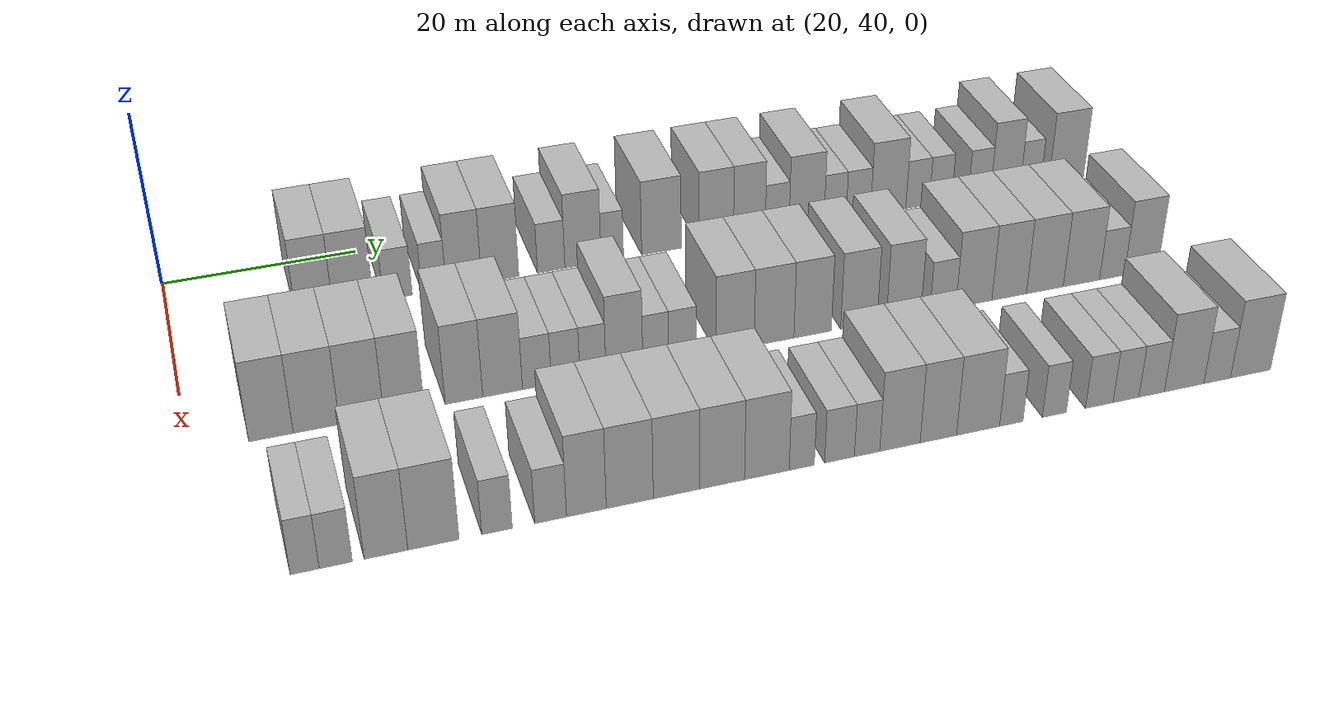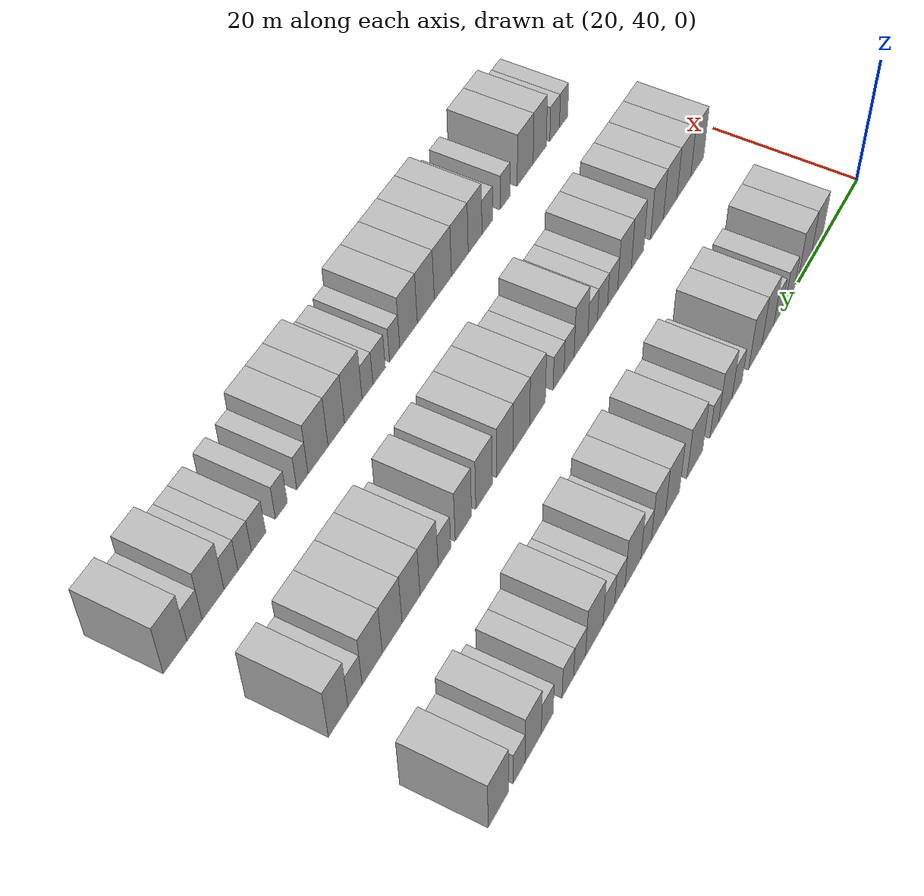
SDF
<sdf version="1.6">
 <world name="default">
  <model name="building_69">
   <static>1</static>
   <pose>25.0000 54.2855 0 0.000000 0.000000 0.000000</pose>
   <link name="link">
    <pose>0 0 4.50 0 0 0</pose>
    <collision name="collision"><geometry><box><size>10.0000 3.7682 9.0000</size></box></geometry></collision>
    <visual name="visual">
     <cast_shadows>0</cast_shadows>
     <geometry><box><size>10.0000 3.7682 9.0000</size></box></geometry>
     <material>
      <script>
       <uri>model://HANNAS_wall/materials/scripts</uri>
       <uri>model://HANNAS_wall/materials/textures</uri>
       <name>vrc/HANNAS_wall</name>
      </script>
     </material>
    </visual>
   </link>
  </model>
  <model name="building_70">
   <static>1</static>
   <pose>25.0000 58.2388 0 0.000000 0.000000 0.000000</pose>
   <link name="link">
    <pose>0 0 4.50 0 0 0</pose>
    <collision name="collision"><geometry><box><size>10.0000 4.1384 9.0000</size></box></geometry></collision>
    <visual name="visual">
     <cast_shadows>0</cast_shadows>
     <geometry><box><size>10.0000 4.1384 9.0000</size></box></geometry>
     <material>
      <script>
       <uri>model://HANNAS_wall/materials/scripts</uri>
       <uri>model://HANNAS_wall/materials/textures</uri>
       <name>vrc/HANNAS_wall</name>
      </script>
     </material>
    </visual>
   </link>
  </model>
  <model name="building_71">
   <static>1</static>
   <pose>25.0000 62.7997 0 0.000000 0.000000 0.000000</pose>
   <link name="link">
    <pose>0 0 3.00 0 0 0</pose>
    <collision name="collision"><geometry><box><size>10.0000 2.9833 6.0000</size></box></geometry></collision>
    <visual name="visual">
     <cast_shadows>0</cast_shadows>
     <geometry><box><size>10.0000 2.9833 6.0000</size></box></geometry>
     <material>
      <script>
       <uri>model://HANNAS_wall/materials/scripts</uri>
       <uri>model://HANNAS_wall/materials/textures</uri>
       <name>vrc/HANNAS_wall</name>
      </script>
     </material>
    </visual>
   </link>
  </model>
  <model name="building_72">
   <static>1</static>
   <pose>25.0000 66.5579 0 0.000000 0.000000 0.000000</pose>
   <link name="link">
    <pose>0 0 3.00 0 0 0</pose>
    <collision name="collision"><geometry><box><size>10.0000 2.5332 6.0000</size></box></geometry></collision>
    <visual name="visual">
     <cast_shadows>0</cast_shadows>
     <geometry><box><size>10.0000 2.5332 6.0000</size></box></geometry>
     <material>
      <script>
       <uri>model://HANNAS_wall/materials/scripts</uri>
       <uri>model://HANNAS_wall/materials/textures</uri>
       <name>vrc/HANNAS_wall</name>
      </script>
     </material>
    </visual>
   </link>
  </model>
  <model name="building_73">
   <static>1</static>
   <pose>25.0000 69.6863 0 0.000000 0.000000 0.000000</pose>
   <link name="link">
    <pose>0 0 4.50 0 0 0</pose>
    <collision name="collision"><geometry><box><size>10.0000 3.7235 9.0000</size></box></geometry></collision>
    <visual name="visual">
     <cast_shadows>0</cast_shadows>
     <geometry><box><size>10.0000 3.7235 9.0000</size></box></geometry>
     <material>
      <script>
       <uri>model://HANNAS_wall/materials/scripts</uri>
       <uri>model://HANNAS_wall/materials/textures</uri>
       <name>vrc/HANNAS_wall</name>
      </script>
     </material>
    </visual>
   </link>
  </model>
  <model name="building_74">
   <static>1</static>
   <pose>25.0000 73.5131 0 0.000000 0.000000 0.000000</pose>
   <link name="link">
    <pose>0 0 4.50 0 0 0</pose>
    <collision name="collision"><geometry><box><size>10.0000 3.9300 9.0000</size></box></geometry></collision>
    <visual name="visual">
     <cast_shadows>0</cast_shadows>
     <geometry><box><size>10.0000 3.9300 9.0000</size></box></geometry>
     <material>
      <script>
       <uri>model://HANNAS_wall/materials/scripts</uri>
       <uri>model://HANNAS_wall/materials/textures</uri>
       <name>vrc/HANNAS_wall</name>
      </script>
     </material>
    </visual>
   </link>
  </model>
  <model name="building_75">
   <static>1</static>
   <pose>25.0000 78.9555 0 0.000000 0.000000 0.000000</pose>
   <link name="link">
    <pose>0 0 3.00 0 0 0</pose>
    <collision name="collision"><geometry><box><size>10.0000 2.9548 6.0000</size></box></geometry></collision>
    <visual name="visual">
     <cast_shadows>0</cast_shadows>
     <geometry><box><size>10.0000 2.9548 6.0000</size></box></geometry>
     <material>
      <script>
       <uri>model://HANNAS_wall/materials/scripts</uri>
       <uri>model://HANNAS_wall/materials/textures</uri>
       <name>vrc/HANNAS_wall</name>
      </script>
     </material>
    </visual>
   </link>
  </model>
  <model name="building_76">
   <static>1</static>
   <pose>25.0000 82.3917 0 0.000000 0.000000 0.000000</pose>
   <link name="link">
    <pose>0 0 4.50 0 0 0</pose>
    <collision name="collision"><geometry><box><size>10.0000 3.9176 9.0000</size></box></geometry></collision>
    <visual name="visual">
     <cast_shadows>0</cast_shadows>
     <geometry><box><size>10.0000 3.9176 9.0000</size></box></geometry>
     <material>
      <script>
       <uri>model://HANNAS_wall/materials/scripts</uri>
       <uri>model://HANNAS_wall/materials/textures</uri>
       <name>vrc/HANNAS_wall</name>
      </script>
     </material>
    </visual>
   </link>
  </model>
  <model name="building_77">
   <static>1</static>
   <pose>25.0000 85.5784 0 0.000000 0.000000 0.000000</pose>
   <link name="link">
    <pose>0 0 3.00 0 0 0</pose>
    <collision name="collision"><geometry><box><size>10.0000 2.4559 6.0000</size></box></geometry></collision>
    <visual name="visual">
     <cast_shadows>0</cast_shadows>
     <geometry><box><size>10.0000 2.4559 6.0000</size></box></geometry>
     <material>
      <script>
       <uri>model://HANNAS_wall/materials/scripts</uri>
       <uri>model://HANNAS_wall/materials/textures</uri>
       <name>vrc/HANNAS_wall</name>
      </script>
     </material>
    </visual>
   </link>
  </model>
  <model name="building_78">
   <static>1</static>
   <pose>25.0000 90.9956 0 0.000000 0.000000 0.000000</pose>
   <link name="link">
    <pose>0 0 4.50 0 0 0</pose>
    <collision name="collision"><geometry><box><size>10.0000 4.3785 9.0000</size></box></geometry></collision>
    <visual name="visual">
     <cast_shadows>0</cast_shadows>
     <geometry><box><size>10.0000 4.3785 9.0000</size></box></geometry>
     <material>
      <script>
       <uri>model://HANNAS_wall/materials/scripts</uri>
       <uri>model://HANNAS_wall/materials/textures</uri>
       <name>vrc/HANNAS_wall</name>
      </script>
     </material>
    </visual>
   </link>
  </model>
  <model name="building_79">
   <static>1</static>
   <pose>25.0000 97.1193 0 0.000000 0.000000 0.000000</pose>
   <link name="link">
    <pose>0 0 4.50 0 0 0</pose>
    <collision name="collision"><geometry><box><size>10.0000 3.8688 9.0000</size></box></geometry></collision>
    <visual name="visual">
     <cast_shadows>0</cast_shadows>
     <geometry><box><size>10.0000 3.8688 9.0000</size></box></geometry>
     <material>
      <script>
       <uri>model://HANNAS_wall/materials/scripts</uri>
       <uri>model://HANNAS_wall/materials/textures</uri>
       <name>vrc/HANNAS_wall</name>
      </script>
     </material>
    </visual>
   </link>
  </model>
  <model name="building_80">
   <static>1</static>
   <pose>25.0000 100.8552 0 0.000000 0.000000 0.000000</pose>
   <link name="link">
    <pose>0 0 4.50 0 0 0</pose>
    <collision name="collision"><geometry><box><size>10.0000 3.6031 9.0000</size></box></geometry></collision>
    <visual name="visual">
     <cast_shadows>0</cast_shadows>
     <geometry><box><size>10.0000 3.6031 9.0000</size></box></geometry>
     <material>
      <script>
       <uri>model://HANNAS_wall/materials/scripts</uri>
       <uri>model://HANNAS_wall/materials/textures</uri>
       <name>vrc/HANNAS_wall</name>
      </script>
     </material>
    </visual>
   </link>
  </model>
  <model name="building_81">
   <static>1</static>
   <pose>25.0000 104.0197 0 0.000000 0.000000 0.000000</pose>
   <link name="link">
    <pose>0 0 3.00 0 0 0</pose>
    <collision name="collision"><geometry><box><size>10.0000 2.7259 6.0000</size></box></geometry></collision>
    <visual name="visual">
     <cast_shadows>0</cast_shadows>
     <geometry><box><size>10.0000 2.7259 6.0000</size></box></geometry>
     <material>
      <script>
       <uri>model://HANNAS_wall/materials/scripts</uri>
       <uri>model://HANNAS_wall/materials/textures</uri>
       <name>vrc/HANNAS_wall</name>
      </script>
     </material>
    </visual>
   </link>
  </model>
  <model name="building_82">
   <static>1</static>
   <pose>25.0000 107.4057 0 0.000000 0.000000 0.000000</pose>
   <link name="link">
    <pose>0 0 4.50 0 0 0</pose>
    <collision name="collision"><geometry><box><size>10.0000 4.0459 9.0000</size></box></geometry></collision>
    <visual name="visual">
     <cast_shadows>0</cast_shadows>
     <geometry><box><size>10.0000 4.0459 9.0000</size></box></geometry>
     <material>
      <script>
       <uri>model://HANNAS_wall/materials/scripts</uri>
       <uri>model://HANNAS_wall/materials/textures</uri>
       <name>vrc/HANNAS_wall</name>
      </script>
     </material>
    </visual>
   </link>
  </model>
  <model name="building_83">
   <static>1</static>
   <pose>25.0000 110.7179 0 0.000000 0.000000 0.000000</pose>
   <link name="link">
    <pose>0 0 3.00 0 0 0</pose>
    <collision name="collision"><geometry><box><size>10.0000 2.5786 6.0000</size></box></geometry></collision>
    <visual name="visual">
     <cast_shadows>0</cast_shadows>
     <geometry><box><size>10.0000 2.5786 6.0000</size></box></geometry>
     <material>
      <script>
       <uri>model://HANNAS_wall/materials/scripts</uri>
       <uri>model://HANNAS_wall/materials/textures</uri>
       <name>vrc/HANNAS_wall</name>
      </script>
     </material>
    </visual>
   </link>
  </model>
  <model name="building_84">
   <static>1</static>
   <pose>25.0000 113.4312 0 0.000000 0.000000 0.000000</pose>
   <link name="link">
    <pose>0 0 3.00 0 0 0</pose>
    <collision name="collision"><geometry><box><size>10.0000 2.8479 6.0000</size></box></geometry></collision>
    <visual name="visual">
     <cast_shadows>0</cast_shadows>
     <geometry><box><size>10.0000 2.8479 6.0000</size></box></geometry>
     <material>
      <script>
       <uri>model://HANNAS_wall/materials/scripts</uri>
       <uri>model://HANNAS_wall/materials/textures</uri>
       <name>vrc/HANNAS_wall</name>
      </script>
     </material>
    </visual>
   </link>
  </model>
  <model name="building_85">
   <static>1</static>
   <pose>25.0000 116.9522 0 0.000000 0.000000 0.000000</pose>
   <link name="link">
    <pose>0 0 4.50 0 0 0</pose>
    <collision name="collision"><geometry><box><size>10.0000 4.1940 9.0000</size></box></geometry></collision>
    <visual name="visual">
     <cast_shadows>0</cast_shadows>
     <geometry><box><size>10.0000 4.1940 9.0000</size></box></geometry>
     <material>
      <script>
       <uri>model://HANNAS_wall/materials/scripts</uri>
       <uri>model://HANNAS_wall/materials/textures</uri>
       <name>vrc/HANNAS_wall</name>
      </script>
     </material>
    </visual>
   </link>
  </model>
  <model name="building_86">
   <static>1</static>
   <pose>25.0000 120.4503 0 0.000000 0.000000 0.000000</pose>
   <link name="link">
    <pose>0 0 3.00 0 0 0</pose>
    <collision name="collision"><geometry><box><size>10.0000 2.8023 6.0000</size></box></geometry></collision>
    <visual name="visual">
     <cast_shadows>0</cast_shadows>
     <geometry><box><size>10.0000 2.8023 6.0000</size></box></geometry>
     <material>
      <script>
       <uri>model://HANNAS_wall/materials/scripts</uri>
       <uri>model://HANNAS_wall/materials/textures</uri>
       <name>vrc/HANNAS_wall</name>
      </script>
     </material>
    </visual>
   </link>
  </model>
  <model name="building_87">
   <static>1</static>
   <pose>25.0000 123.1998 0 0.000000 0.000000 0.000000</pose>
   <link name="link">
    <pose>0 0 3.00 0 0 0</pose>
    <collision name="collision"><geometry><box><size>10.0000 2.6966 6.0000</size></box></geometry></collision>
    <visual name="visual">
     <cast_shadows>0</cast_shadows>
     <geometry><box><size>10.0000 2.6966 6.0000</size></box></geometry>
     <material>
      <script>
       <uri>model://HANNAS_wall/materials/scripts</uri>
       <uri>model://HANNAS_wall/materials/textures</uri>
       <name>vrc/HANNAS_wall</name>
      </script>
     </material>
    </visual>
   </link>
  </model>
  <model name="building_88">
   <static>1</static>
   <pose>25.0000 127.9009 0 0.000000 0.000000 0.000000</pose>
   <link name="link">
    <pose>0 0 3.00 0 0 0</pose>
    <collision name="collision"><geometry><box><size>10.0000 2.7056 6.0000</size></box></geometry></collision>
    <visual name="visual">
     <cast_shadows>0</cast_shadows>
     <geometry><box><size>10.0000 2.7056 6.0000</size></box></geometry>
     <material>
      <script>
       <uri>model://HANNAS_wall/materials/scripts</uri>
       <uri>model://HANNAS_wall/materials/textures</uri>
       <name>vrc/HANNAS_wall</name>
      </script>
     </material>
    </visual>
   </link>
  </model>
  <model name="building_89">
   <static>1</static>
   <pose>25.0000 131.0616 0 0.000000 0.000000 0.000000</pose>
   <link name="link">
    <pose>0 0 4.50 0 0 0</pose>
    <collision name="collision"><geometry><box><size>10.0000 3.6159 9.0000</size></box></geometry></collision>
    <visual name="visual">
     <cast_shadows>0</cast_shadows>
     <geometry><box><size>10.0000 3.6159 9.0000</size></box></geometry>
     <material>
      <script>
       <uri>model://HANNAS_wall/materials/scripts</uri>
       <uri>model://HANNAS_wall/materials/textures</uri>
       <name>vrc/HANNAS_wall</name>
      </script>
     </material>
    </visual>
   </link>
  </model>
  <model name="building_90">
   <static>1</static>
   <pose>25.0000 134.1440 0 0.000000 0.000000 0.000000</pose>
   <link name="link">
    <pose>0 0 3.00 0 0 0</pose>
    <collision name="collision"><geometry><box><size>10.0000 2.5488 6.0000</size></box></geometry></collision>
    <visual name="visual">
     <cast_shadows>0</cast_shadows>
     <geometry><box><size>10.0000 2.5488 6.0000</size></box></geometry>
     <material>
      <script>
       <uri>model://HANNAS_wall/materials/scripts</uri>
       <uri>model://HANNAS_wall/materials/textures</uri>
       <name>vrc/HANNAS_wall</name>
      </script>
     </material>
    </visual>
   </link>
  </model>
  <model name="building_91">
   <static>1</static>
   <pose>25.0000 138.5747 0 0.000000 0.000000 0.000000</pose>
   <link name="link">
    <pose>0 0 4.50 0 0 0</pose>
    <collision name="collision"><geometry><box><size>10.0000 4.3126 9.0000</size></box></geometry></collision>
    <visual name="visual">
     <cast_shadows>0</cast_shadows>
     <geometry><box><size>10.0000 4.3126 9.0000</size></box></geometry>
     <material>
      <script>
       <uri>model://HANNAS_wall/materials/scripts</uri>
       <uri>model://HANNAS_wall/materials/textures</uri>
       <name>vrc/HANNAS_wall</name>
      </script>
     </material>
    </visual>
   </link>
  </model>
  <model name="building_191">
   <static>1</static>
   <pose>44.0000 47.5921 0 0.000000 0.000000 0.000000</pose>
   <link name="link">
    <pose>0 0 4.50 0 0 0</pose>
    <collision name="collision"><geometry><box><size>10.0000 4.0744 9.0000</size></box></geometry></collision>
    <visual name="visual">
     <cast_shadows>0</cast_shadows>
     <geometry><box><size>10.0000 4.0744 9.0000</size></box></geometry>
     <material>
      <script>
       <uri>model://HANNAS_wall/materials/scripts</uri>
       <uri>model://HANNAS_wall/materials/textures</uri>
       <name>vrc/HANNAS_wall</name>
      </script>
     </material>
    </visual>
   </link>
  </model>
  <model name="building_192">
   <static>1</static>
   <pose>44.0000 51.7733 0 0.000000 0.000000 0.000000</pose>
   <link name="link">
    <pose>0 0 4.50 0 0 0</pose>
    <collision name="collision"><geometry><box><size>10.0000 4.2881 9.0000</size></box></geometry></collision>
    <visual name="visual">
     <cast_shadows>0</cast_shadows>
     <geometry><box><size>10.0000 4.2881 9.0000</size></box></geometry>
     <material>
      <script>
       <uri>model://HANNAS_wall/materials/scripts</uri>
       <uri>model://HANNAS_wall/materials/textures</uri>
       <name>vrc/HANNAS_wall</name>
      </script>
     </material>
    </visual>
   </link>
  </model>
  <model name="building_193">
   <static>1</static>
   <pose>44.0000 55.9891 0 0.000000 0.000000 0.000000</pose>
   <link name="link">
    <pose>0 0 4.50 0 0 0</pose>
    <collision name="collision"><geometry><box><size>10.0000 4.1434 9.0000</size></box></geometry></collision>
    <visual name="visual">
     <cast_shadows>0</cast_shadows>
     <geometry><box><size>10.0000 4.1434 9.0000</size></box></geometry>
     <material>
      <script>
       <uri>model://HANNAS_wall/materials/scripts</uri>
       <uri>model://HANNAS_wall/materials/textures</uri>
       <name>vrc/HANNAS_wall</name>
      </script>
     </material>
    </visual>
   </link>
  </model>
  <model name="building_194">
   <static>1</static>
   <pose>44.0000 59.9744 0 0.000000 0.000000 0.000000</pose>
   <link name="link">
    <pose>0 0 4.50 0 0 0</pose>
    <collision name="collision"><geometry><box><size>10.0000 3.8271 9.0000</size></box></geometry></collision>
    <visual name="visual">
     <cast_shadows>0</cast_shadows>
     <geometry><box><size>10.0000 3.8271 9.0000</size></box></geometry>
     <material>
      <script>
       <uri>model://HANNAS_wall/materials/scripts</uri>
       <uri>model://HANNAS_wall/materials/textures</uri>
       <name>vrc/HANNAS_wall</name>
      </script>
     </material>
    </visual>
   </link>
  </model>
  <model name="building_195">
   <static>1</static>
   <pose>44.0000 65.7006 0 0.000000 0.000000 0.000000</pose>
   <link name="link">
    <pose>0 0 4.50 0 0 0</pose>
    <collision name="collision"><geometry><box><size>10.0000 3.6254 9.0000</size></box></geometry></collision>
    <visual name="visual">
     <cast_shadows>0</cast_shadows>
     <geometry><box><size>10.0000 3.6254 9.0000</size></box></geometry>
     <material>
      <script>
       <uri>model://HANNAS_wall/materials/scripts</uri>
       <uri>model://HANNAS_wall/materials/textures</uri>
       <name>vrc/HANNAS_wall</name>
      </script>
     </material>
    </visual>
   </link>
  </model>
  <model name="building_196">
   <static>1</static>
   <pose>44.0000 69.4477 0 0.000000 0.000000 0.000000</pose>
   <link name="link">
    <pose>0 0 4.50 0 0 0</pose>
    <collision name="collision"><geometry><box><size>10.0000 3.8686 9.0000</size></box></geometry></collision>
    <visual name="visual">
     <cast_shadows>0</cast_shadows>
     <geometry><box><size>10.0000 3.8686 9.0000</size></box></geometry>
     <material>
      <script>
       <uri>model://HANNAS_wall/materials/scripts</uri>
       <uri>model://HANNAS_wall/materials/textures</uri>
       <name>vrc/HANNAS_wall</name>
      </script>
     </material>
    </visual>
   </link>
  </model>
  <model name="building_197">
   <static>1</static>
   <pose>44.0000 72.7989 0 0.000000 0.000000 0.000000</pose>
   <link name="link">
    <pose>0 0 3.00 0 0 0</pose>
    <collision name="collision"><geometry><box><size>10.0000 2.8337 6.0000</size></box></geometry></collision>
    <visual name="visual">
     <cast_shadows>0</cast_shadows>
     <geometry><box><size>10.0000 2.8337 6.0000</size></box></geometry>
     <material>
      <script>
       <uri>model://HANNAS_wall/materials/scripts</uri>
       <uri>model://HANNAS_wall/materials/textures</uri>
       <name>vrc/HANNAS_wall</name>
      </script>
     </material>
    </visual>
   </link>
  </model>
  <model name="building_198">
   <static>1</static>
   <pose>44.0000 75.6313 0 0.000000 0.000000 0.000000</pose>
   <link name="link">
    <pose>0 0 3.00 0 0 0</pose>
    <collision name="collision"><geometry><box><size>10.0000 2.8311 6.0000</size></box></geometry></collision>
    <visual name="visual">
     <cast_shadows>0</cast_shadows>
     <geometry><box><size>10.0000 2.8311 6.0000</size></box></geometry>
     <material>
      <script>
       <uri>model://HANNAS_wall/materials/scripts</uri>
       <uri>model://HANNAS_wall/materials/textures</uri>
       <name>vrc/HANNAS_wall</name>
      </script>
     </material>
    </visual>
   </link>
  </model>
  <model name="building_199">
   <static>1</static>
   <pose>44.0000 78.3486 0 0.000000 0.000000 0.000000</pose>
   <link name="link">
    <pose>0 0 3.00 0 0 0</pose>
    <collision name="collision"><geometry><box><size>10.0000 2.6035 6.0000</size></box></geometry></collision>
    <visual name="visual">
     <cast_shadows>0</cast_shadows>
     <geometry><box><size>10.0000 2.6035 6.0000</size></box></geometry>
     <material>
      <script>
       <uri>model://HANNAS_wall/materials/scripts</uri>
       <uri>model://HANNAS_wall/materials/textures</uri>
       <name>vrc/HANNAS_wall</name>
      </script>
     </material>
    </visual>
   </link>
  </model>
  <model name="building_200">
   <static>1</static>
   <pose>44.0000 81.5048 0 0.000000 0.000000 0.000000</pose>
   <link name="link">
    <pose>0 0 4.50 0 0 0</pose>
    <collision name="collision"><geometry><box><size>10.0000 3.7090 9.0000</size></box></geometry></collision>
    <visual name="visual">
     <cast_shadows>0</cast_shadows>
     <geometry><box><size>10.0000 3.7090 9.0000</size></box></geometry>
     <material>
      <script>
       <uri>model://HANNAS_wall/materials/scripts</uri>
       <uri>model://HANNAS_wall/materials/textures</uri>
       <name>vrc/HANNAS_wall</name>
      </script>
     </material>
    </visual>
   </link>
  </model>
  <model name="building_201">
   <static>1</static>
   <pose>44.0000 84.6715 0 0.000000 0.000000 0.000000</pose>
   <link name="link">
    <pose>0 0 3.00 0 0 0</pose>
    <collision name="collision"><geometry><box><size>10.0000 2.6244 6.0000</size></box></geometry></collision>
    <visual name="visual">
     <cast_shadows>0</cast_shadows>
     <geometry><box><size>10.0000 2.6244 6.0000</size></box></geometry>
     <material>
      <script>
       <uri>model://HANNAS_wall/materials/scripts</uri>
       <uri>model://HANNAS_wall/materials/textures</uri>
       <name>vrc/HANNAS_wall</name>
      </script>
     </material>
    </visual>
   </link>
  </model>
  <model name="building_202">
   <static>1</static>
   <pose>44.0000 87.4116 0 0.000000 0.000000 0.000000</pose>
   <link name="link">
    <pose>0 0 3.00 0 0 0</pose>
    <collision name="collision"><geometry><box><size>10.0000 2.8558 6.0000</size></box></geometry></collision>
    <visual name="visual">
     <cast_shadows>0</cast_shadows>
     <geometry><box><size>10.0000 2.8558 6.0000</size></box></geometry>
     <material>
      <script>
       <uri>model://HANNAS_wall/materials/scripts</uri>
       <uri>model://HANNAS_wall/materials/textures</uri>
       <name>vrc/HANNAS_wall</name>
      </script>
     </material>
    </visual>
   </link>
  </model>
  <model name="building_203">
   <static>1</static>
   <pose>44.0000 92.8232 0 0.000000 0.000000 0.000000</pose>
   <link name="link">
    <pose>0 0 4.50 0 0 0</pose>
    <collision name="collision"><geometry><box><size>10.0000 3.9675 9.0000</size></box></geometry></collision>
    <visual name="visual">
     <cast_shadows>0</cast_shadows>
     <geometry><box><size>10.0000 3.9675 9.0000</size></box></geometry>
     <material>
      <script>
       <uri>model://HANNAS_wall/materials/scripts</uri>
       <uri>model://HANNAS_wall/materials/textures</uri>
       <name>vrc/HANNAS_wall</name>
      </script>
     </material>
    </visual>
   </link>
  </model>
  <model name="building_204">
   <static>1</static>
   <pose>44.0000 96.8915 0 0.000000 0.000000 0.000000</pose>
   <link name="link">
    <pose>0 0 4.50 0 0 0</pose>
    <collision name="collision"><geometry><box><size>10.0000 4.1689 9.0000</size></box></geometry></collision>
    <visual name="visual">
     <cast_shadows>0</cast_shadows>
     <geometry><box><size>10.0000 4.1689 9.0000</size></box></geometry>
     <material>
      <script>
       <uri>model://HANNAS_wall/materials/scripts</uri>
       <uri>model://HANNAS_wall/materials/textures</uri>
       <name>vrc/HANNAS_wall</name>
      </script>
     </material>
    </visual>
   </link>
  </model>
  <model name="building_205">
   <static>1</static>
   <pose>44.0000 100.9642 0 0.000000 0.000000 0.000000</pose>
   <link name="link">
    <pose>0 0 4.50 0 0 0</pose>
    <collision name="collision"><geometry><box><size>10.0000 3.9766 9.0000</size></box></geometry></collision>
    <visual name="visual">
     <cast_shadows>0</cast_shadows>
     <geometry><box><size>10.0000 3.9766 9.0000</size></box></geometry>
     <material>
      <script>
       <uri>model://HANNAS_wall/materials/scripts</uri>
       <uri>model://HANNAS_wall/materials/textures</uri>
       <name>vrc/HANNAS_wall</name>
      </script>
     </material>
    </visual>
   </link>
  </model>
  <model name="building_206">
   <static>1</static>
   <pose>44.0000 105.9127 0 0.000000 0.000000 0.000000</pose>
   <link name="link">
    <pose>0 0 4.50 0 0 0</pose>
    <collision name="collision"><geometry><box><size>10.0000 3.9203 9.0000</size></box></geometry></collision>
    <visual name="visual">
     <cast_shadows>0</cast_shadows>
     <geometry><box><size>10.0000 3.9203 9.0000</size></box></geometry>
     <material>
      <script>
       <uri>model://HANNAS_wall/materials/scripts</uri>
       <uri>model://HANNAS_wall/materials/textures</uri>
       <name>vrc/HANNAS_wall</name>
      </script>
     </material>
    </visual>
   </link>
  </model>
  <model name="building_207">
   <static>1</static>
   <pose>44.0000 110.7574 0 0.000000 0.000000 0.000000</pose>
   <link name="link">
    <pose>0 0 4.50 0 0 0</pose>
    <collision name="collision"><geometry><box><size>10.0000 3.7691 9.0000</size></box></geometry></collision>
    <visual name="visual">
     <cast_shadows>0</cast_shadows>
     <geometry><box><size>10.0000 3.7691 9.0000</size></box></geometry>
     <material>
      <script>
       <uri>model://HANNAS_wall/materials/scripts</uri>
       <uri>model://HANNAS_wall/materials/textures</uri>
       <name>vrc/HANNAS_wall</name>
      </script>
     </material>
    </visual>
   </link>
  </model>
  <model name="building_208">
   <static>1</static>
   <pose>44.0000 115.0746 0 0.000000 0.000000 0.000000</pose>
   <link name="link">
    <pose>0 0 3.00 0 0 0</pose>
    <collision name="collision"><geometry><box><size>10.0000 2.8653 6.0000</size></box></geometry></collision>
    <visual name="visual">
     <cast_shadows>0</cast_shadows>
     <geometry><box><size>10.0000 2.8653 6.0000</size></box></geometry>
     <material>
      <script>
       <uri>model://HANNAS_wall/materials/scripts</uri>
       <uri>model://HANNAS_wall/materials/textures</uri>
       <name>vrc/HANNAS_wall</name>
      </script>
     </material>
    </visual>
   </link>
  </model>
  <model name="building_209">
   <static>1</static>
   <pose>44.0000 118.5068 0 0.000000 0.000000 0.000000</pose>
   <link name="link">
    <pose>0 0 4.50 0 0 0</pose>
    <collision name="collision"><geometry><box><size>10.0000 3.9992 9.0000</size></box></geometry></collision>
    <visual name="visual">
     <cast_shadows>0</cast_shadows>
     <geometry><box><size>10.0000 3.9992 9.0000</size></box></geometry>
     <material>
      <script>
       <uri>model://HANNAS_wall/materials/scripts</uri>
       <uri>model://HANNAS_wall/materials/textures</uri>
       <name>vrc/HANNAS_wall</name>
      </script>
     </material>
    </visual>
   </link>
  </model>
  <model name="building_210">
   <static>1</static>
   <pose>44.0000 122.4502 0 0.000000 0.000000 0.000000</pose>
   <link name="link">
    <pose>0 0 4.50 0 0 0</pose>
    <collision name="collision"><geometry><box><size>10.0000 3.8875 9.0000</size></box></geometry></collision>
    <visual name="visual">
     <cast_shadows>0</cast_shadows>
     <geometry><box><size>10.0000 3.8875 9.0000</size></box></geometry>
     <material>
      <script>
       <uri>model://HANNAS_wall/materials/scripts</uri>
       <uri>model://HANNAS_wall/materials/textures</uri>
       <name>vrc/HANNAS_wall</name>
      </script>
     </material>
    </visual>
   </link>
  </model>
  <model name="building_211">
   <static>1</static>
   <pose>44.0000 126.4869 0 0.000000 0.000000 0.000000</pose>
   <link name="link">
    <pose>0 0 4.50 0 0 0</pose>
    <collision name="collision"><geometry><box><size>10.0000 4.1861 9.0000</size></box></geometry></collision>
    <visual name="visual">
     <cast_shadows>0</cast_shadows>
     <geometry><box><size>10.0000 4.1861 9.0000</size></box></geometry>
     <material>
      <script>
       <uri>model://HANNAS_wall/materials/scripts</uri>
       <uri>model://HANNAS_wall/materials/textures</uri>
       <name>vrc/HANNAS_wall</name>
      </script>
     </material>
    </visual>
   </link>
  </model>
  <model name="building_212">
   <static>1</static>
   <pose>44.0000 130.6654 0 0.000000 0.000000 0.000000</pose>
   <link name="link">
    <pose>0 0 4.50 0 0 0</pose>
    <collision name="collision"><geometry><box><size>10.0000 4.1708 9.0000</size></box></geometry></collision>
    <visual name="visual">
     <cast_shadows>0</cast_shadows>
     <geometry><box><size>10.0000 4.1708 9.0000</size></box></geometry>
     <material>
      <script>
       <uri>model://HANNAS_wall/materials/scripts</uri>
       <uri>model://HANNAS_wall/materials/textures</uri>
       <name>vrc/HANNAS_wall</name>
      </script>
     </material>
    </visual>
   </link>
  </model>
  <model name="building_213">
   <static>1</static>
   <pose>44.0000 134.1851 0 0.000000 0.000000 0.000000</pose>
   <link name="link">
    <pose>0 0 3.00 0 0 0</pose>
    <collision name="collision"><geometry><box><size>10.0000 2.8686 6.0000</size></box></geometry></collision>
    <visual name="visual">
     <cast_shadows>0</cast_shadows>
     <geometry><box><size>10.0000 2.8686 6.0000</size></box></geometry>
     <material>
      <script>
       <uri>model://HANNAS_wall/materials/scripts</uri>
       <uri>model://HANNAS_wall/materials/textures</uri>
       <name>vrc/HANNAS_wall</name>
      </script>
     </material>
    </visual>
   </link>
  </model>
  <model name="building_214">
   <static>1</static>
   <pose>44.0000 137.5703 0 0.000000 0.000000 0.000000</pose>
   <link name="link">
    <pose>0 0 4.50 0 0 0</pose>
    <collision name="collision"><geometry><box><size>10.0000 3.9018 9.0000</size></box></geometry></collision>
    <visual name="visual">
     <cast_shadows>0</cast_shadows>
     <geometry><box><size>10.0000 3.9018 9.0000</size></box></geometry>
     <material>
      <script>
       <uri>model://HANNAS_wall/materials/scripts</uri>
       <uri>model://HANNAS_wall/materials/textures</uri>
       <name>vrc/HANNAS_wall</name>
      </script>
     </material>
    </visual>
   </link>
  </model>
  <model name="building_309">
   <static>1</static>
   <pose>63.0000 48.0477 0 0.000000 0.000000 0.000000</pose>
   <link name="link">
    <pose>0 0 3.00 0 0 0</pose>
    <collision name="collision"><geometry><box><size>10.0000 2.4413 6.0000</size></box></geometry></collision>
    <visual name="visual">
     <cast_shadows>0</cast_shadows>
     <geometry><box><size>10.0000 2.4413 6.0000</size></box></geometry>
     <material>
      <script>
       <uri>model://HANNAS_wall/materials/scripts</uri>
       <uri>model://HANNAS_wall/materials/textures</uri>
       <name>vrc/HANNAS_wall</name>
      </script>
     </material>
    </visual>
   </link>
  </model>
  <model name="building_310">
   <static>1</static>
   <pose>63.0000 50.6701 0 0.000000 0.000000 0.000000</pose>
   <link name="link">
    <pose>0 0 3.00 0 0 0</pose>
    <collision name="collision"><geometry><box><size>10.0000 2.8037 6.0000</size></box></geometry></collision>
    <visual name="visual">
     <cast_shadows>0</cast_shadows>
     <geometry><box><size>10.0000 2.8037 6.0000</size></box></geometry>
     <material>
      <script>
       <uri>model://HANNAS_wall/materials/scripts</uri>
       <uri>model://HANNAS_wall/materials/textures</uri>
       <name>vrc/HANNAS_wall</name>
      </script>
     </material>
    </visual>
   </link>
  </model>
  <model name="building_311">
   <static>1</static>
   <pose>63.0000 54.9515 0 0.000000 0.000000 0.000000</pose>
   <link name="link">
    <pose>0 0 4.50 0 0 0</pose>
    <collision name="collision"><geometry><box><size>10.0000 3.7591 9.0000</size></box></geometry></collision>
    <visual name="visual">
     <cast_shadows>0</cast_shadows>
     <geometry><box><size>10.0000 3.7591 9.0000</size></box></geometry>
     <material>
      <script>
       <uri>model://HANNAS_wall/materials/scripts</uri>
       <uri>model://HANNAS_wall/materials/textures</uri>
       <name>vrc/HANNAS_wall</name>
      </script>
     </material>
    </visual>
   </link>
  </model>
  <model name="building_312">
   <static>1</static>
   <pose>63.0000 59.0565 0 0.000000 0.000000 0.000000</pose>
   <link name="link">
    <pose>0 0 4.50 0 0 0</pose>
    <collision name="collision"><geometry><box><size>10.0000 4.4509 9.0000</size></box></geometry></collision>
    <visual name="visual">
     <cast_shadows>0</cast_shadows>
     <geometry><box><size>10.0000 4.4509 9.0000</size></box></geometry>
     <material>
      <script>
       <uri>model://HANNAS_wall/materials/scripts</uri>
       <uri>model://HANNAS_wall/materials/textures</uri>
       <name>vrc/HANNAS_wall</name>
      </script>
     </material>
    </visual>
   </link>
  </model>
  <model name="building_313">
   <static>1</static>
   <pose>63.0000 64.6294 0 0.000000 0.000000 0.000000</pose>
   <link name="link">
    <pose>0 0 3.00 0 0 0</pose>
    <collision name="collision"><geometry><box><size>10.0000 2.6950 6.0000</size></box></geometry></collision>
    <visual name="visual">
     <cast_shadows>0</cast_shadows>
     <geometry><box><size>10.0000 2.6950 6.0000</size></box></geometry>
     <material>
      <script>
       <uri>model://HANNAS_wall/materials/scripts</uri>
       <uri>model://HANNAS_wall/materials/textures</uri>
       <name>vrc/HANNAS_wall</name>
      </script>
     </material>
    </visual>
   </link>
  </model>
  <model name="building_314">
   <static>1</static>
   <pose>63.0000 69.4036 0 0.000000 0.000000 0.000000</pose>
   <link name="link">
    <pose>0 0 3.00 0 0 0</pose>
    <collision name="collision"><geometry><box><size>10.0000 2.8533 6.0000</size></box></geometry></collision>
    <visual name="visual">
     <cast_shadows>0</cast_shadows>
     <geometry><box><size>10.0000 2.8533 6.0000</size></box></geometry>
     <material>
      <script>
       <uri>model://HANNAS_wall/materials/scripts</uri>
       <uri>model://HANNAS_wall/materials/textures</uri>
       <name>vrc/HANNAS_wall</name>
      </script>
     </material>
    </visual>
   </link>
  </model>
  <model name="building_315">
   <static>1</static>
   <pose>63.0000 72.6359 0 0.000000 0.000000 0.000000</pose>
   <link name="link">
    <pose>0 0 4.50 0 0 0</pose>
    <collision name="collision"><geometry><box><size>10.0000 3.6112 9.0000</size></box></geometry></collision>
    <visual name="visual">
     <cast_shadows>0</cast_shadows>
     <geometry><box><size>10.0000 3.6112 9.0000</size></box></geometry>
     <material>
      <script>
       <uri>model://HANNAS_wall/materials/scripts</uri>
       <uri>model://HANNAS_wall/materials/textures</uri>
       <name>vrc/HANNAS_wall</name>
      </script>
     </material>
    </visual>
   </link>
  </model>
  <model name="building_316">
   <static>1</static>
   <pose>63.0000 76.5963 0 0.000000 0.000000 0.000000</pose>
   <link name="link">
    <pose>0 0 4.50 0 0 0</pose>
    <collision name="collision"><geometry><box><size>10.0000 4.3098 9.0000</size></box></geometry></collision>
    <visual name="visual">
     <cast_shadows>0</cast_shadows>
     <geometry><box><size>10.0000 4.3098 9.0000</size></box></geometry>
     <material>
      <script>
       <uri>model://HANNAS_wall/materials/scripts</uri>
       <uri>model://HANNAS_wall/materials/textures</uri>
       <name>vrc/HANNAS_wall</name>
      </script>
     </material>
    </visual>
   </link>
  </model>
  <model name="building_317">
   <static>1</static>
   <pose>63.0000 80.9185 0 0.000000 0.000000 0.000000</pose>
   <link name="link">
    <pose>0 0 4.50 0 0 0</pose>
    <collision name="collision"><geometry><box><size>10.0000 4.3346 9.0000</size></box></geometry></collision>
    <visual name="visual">
     <cast_shadows>0</cast_shadows>
     <geometry><box><size>10.0000 4.3346 9.0000</size></box></geometry>
     <material>
      <script>
       <uri>model://HANNAS_wall/materials/scripts</uri>
       <uri>model://HANNAS_wall/materials/textures</uri>
       <name>vrc/HANNAS_wall</name>
      </script>
     </material>
    </visual>
   </link>
  </model>
  <model name="building_318">
   <static>1</static>
   <pose>63.0000 85.1857 0 0.000000 0.000000 0.000000</pose>
   <link name="link">
    <pose>0 0 4.50 0 0 0</pose>
    <collision name="collision"><geometry><box><size>10.0000 4.1999 9.0000</size></box></geometry></collision>
    <visual name="visual">
     <cast_shadows>0</cast_shadows>
     <geometry><box><size>10.0000 4.1999 9.0000</size></box></geometry>
     <material>
      <script>
       <uri>model://HANNAS_wall/materials/scripts</uri>
       <uri>model://HANNAS_wall/materials/textures</uri>
       <name>vrc/HANNAS_wall</name>
      </script>
     </material>
    </visual>
   </link>
  </model>
  <model name="building_319">
   <static>1</static>
   <pose>63.0000 89.4163 0 0.000000 0.000000 0.000000</pose>
   <link name="link">
    <pose>0 0 4.50 0 0 0</pose>
    <collision name="collision"><geometry><box><size>10.0000 4.2613 9.0000</size></box></geometry></collision>
    <visual name="visual">
     <cast_shadows>0</cast_shadows>
     <geometry><box><size>10.0000 4.2613 9.0000</size></box></geometry>
     <material>
      <script>
       <uri>model://HANNAS_wall/materials/scripts</uri>
       <uri>model://HANNAS_wall/materials/textures</uri>
       <name>vrc/HANNAS_wall</name>
      </script>
     </material>
    </visual>
   </link>
  </model>
  <model name="building_320">
   <static>1</static>
   <pose>63.0000 92.7579 0 0.000000 0.000000 0.000000</pose>
   <link name="link">
    <pose>0 0 3.00 0 0 0</pose>
    <collision name="collision"><geometry><box><size>10.0000 2.4221 6.0000</size></box></geometry></collision>
    <visual name="visual">
     <cast_shadows>0</cast_shadows>
     <geometry><box><size>10.0000 2.4221 6.0000</size></box></geometry>
     <material>
      <script>
       <uri>model://HANNAS_wall/materials/scripts</uri>
       <uri>model://HANNAS_wall/materials/textures</uri>
       <name>vrc/HANNAS_wall</name>
      </script>
     </material>
    </visual>
   </link>
  </model>
  <model name="building_321">
   <static>1</static>
   <pose>63.0000 96.4186 0 0.000000 0.000000 0.000000</pose>
   <link name="link">
    <pose>0 0 3.00 0 0 0</pose>
    <collision name="collision"><geometry><box><size>10.0000 2.8991 6.0000</size></box></geometry></collision>
    <visual name="visual">
     <cast_shadows>0</cast_shadows>
     <geometry><box><size>10.0000 2.8991 6.0000</size></box></geometry>
     <material>
      <script>
       <uri>model://HANNAS_wall/materials/scripts</uri>
       <uri>model://HANNAS_wall/materials/textures</uri>
       <name>vrc/HANNAS_wall</name>
      </script>
     </material>
    </visual>
   </link>
  </model>
  <model name="building_322">
   <static>1</static>
   <pose>63.0000 99.1090 0 0.000000 0.000000 0.000000</pose>
   <link name="link">
    <pose>0 0 3.00 0 0 0</pose>
    <collision name="collision"><geometry><box><size>10.0000 2.4819 6.0000</size></box></geometry></collision>
    <visual name="visual">
     <cast_shadows>0</cast_shadows>
     <geometry><box><size>10.0000 2.4819 6.0000</size></box></geometry>
     <material>
      <script>
       <uri>model://HANNAS_wall/materials/scripts</uri>
       <uri>model://HANNAS_wall/materials/textures</uri>
       <name>vrc/HANNAS_wall</name>
      </script>
     </material>
    </visual>
   </link>
  </model>
  <model name="building_323">
   <static>1</static>
   <pose>63.0000 102.3539 0 0.000000 0.000000 0.000000</pose>
   <link name="link">
    <pose>0 0 4.50 0 0 0</pose>
    <collision name="collision"><geometry><box><size>10.0000 4.0078 9.0000</size></box></geometry></collision>
    <visual name="visual">
     <cast_shadows>0</cast_shadows>
     <geometry><box><size>10.0000 4.0078 9.0000</size></box></geometry>
     <material>
      <script>
       <uri>model://HANNAS_wall/materials/scripts</uri>
       <uri>model://HANNAS_wall/materials/textures</uri>
       <name>vrc/HANNAS_wall</name>
      </script>
     </material>
    </visual>
   </link>
  </model>
  <model name="building_324">
   <static>1</static>
   <pose>63.0000 106.1847 0 0.000000 0.000000 0.000000</pose>
   <link name="link">
    <pose>0 0 4.50 0 0 0</pose>
    <collision name="collision"><geometry><box><size>10.0000 3.6539 9.0000</size></box></geometry></collision>
    <visual name="visual">
     <cast_shadows>0</cast_shadows>
     <geometry><box><size>10.0000 3.6539 9.0000</size></box></geometry>
     <material>
      <script>
       <uri>model://HANNAS_wall/materials/scripts</uri>
       <uri>model://HANNAS_wall/materials/textures</uri>
       <name>vrc/HANNAS_wall</name>
      </script>
     </material>
    </visual>
   </link>
  </model>
  <model name="building_325">
   <static>1</static>
   <pose>63.0000 110.1933 0 0.000000 0.000000 0.000000</pose>
   <link name="link">
    <pose>0 0 4.50 0 0 0</pose>
    <collision name="collision"><geometry><box><size>10.0000 4.3633 9.0000</size></box></geometry></collision>
    <visual name="visual">
     <cast_shadows>0</cast_shadows>
     <geometry><box><size>10.0000 4.3633 9.0000</size></box></geometry>
     <material>
      <script>
       <uri>model://HANNAS_wall/materials/scripts</uri>
       <uri>model://HANNAS_wall/materials/textures</uri>
       <name>vrc/HANNAS_wall</name>
      </script>
     </material>
    </visual>
   </link>
  </model>
  <model name="building_326">
   <static>1</static>
   <pose>63.0000 113.5775 0 0.000000 0.000000 0.000000</pose>
   <link name="link">
    <pose>0 0 3.00 0 0 0</pose>
    <collision name="collision"><geometry><box><size>10.0000 2.4049 6.0000</size></box></geometry></collision>
    <visual name="visual">
     <cast_shadows>0</cast_shadows>
     <geometry><box><size>10.0000 2.4049 6.0000</size></box></geometry>
     <material>
      <script>
       <uri>model://HANNAS_wall/materials/scripts</uri>
       <uri>model://HANNAS_wall/materials/textures</uri>
       <name>vrc/HANNAS_wall</name>
      </script>
     </material>
    </visual>
   </link>
  </model>
  <model name="building_327">
   <static>1</static>
   <pose>63.0000 118.0208 0 0.000000 0.000000 0.000000</pose>
   <link name="link">
    <pose>0 0 3.00 0 0 0</pose>
    <collision name="collision"><geometry><box><size>10.0000 2.4818 6.0000</size></box></geometry></collision>
    <visual name="visual">
     <cast_shadows>0</cast_shadows>
     <geometry><box><size>10.0000 2.4818 6.0000</size></box></geometry>
     <material>
      <script>
       <uri>model://HANNAS_wall/materials/scripts</uri>
       <uri>model://HANNAS_wall/materials/textures</uri>
       <name>vrc/HANNAS_wall</name>
      </script>
     </material>
    </visual>
   </link>
  </model>
  <model name="building_328">
   <static>1</static>
   <pose>63.0000 122.7103 0 0.000000 0.000000 0.000000</pose>
   <link name="link">
    <pose>0 0 3.00 0 0 0</pose>
    <collision name="collision"><geometry><box><size>10.0000 2.8973 6.0000</size></box></geometry></collision>
    <visual name="visual">
     <cast_shadows>0</cast_shadows>
     <geometry><box><size>10.0000 2.8973 6.0000</size></box></geometry>
     <material>
      <script>
       <uri>model://HANNAS_wall/materials/scripts</uri>
       <uri>model://HANNAS_wall/materials/textures</uri>
       <name>vrc/HANNAS_wall</name>
      </script>
     </material>
    </visual>
   </link>
  </model>
  <model name="building_329">
   <static>1</static>
   <pose>63.0000 125.5245 0 0.000000 0.000000 0.000000</pose>
   <link name="link">
    <pose>0 0 3.00 0 0 0</pose>
    <collision name="collision"><geometry><box><size>10.0000 2.7311 6.0000</size></box></geometry></collision>
    <visual name="visual">
     <cast_shadows>0</cast_shadows>
     <geometry><box><size>10.0000 2.7311 6.0000</size></box></geometry>
     <material>
      <script>
       <uri>model://HANNAS_wall/materials/scripts</uri>
       <uri>model://HANNAS_wall/materials/textures</uri>
       <name>vrc/HANNAS_wall</name>
      </script>
     </material>
    </visual>
   </link>
  </model>
  <model name="building_330">
   <static>1</static>
   <pose>63.0000 128.2552 0 0.000000 0.000000 0.000000</pose>
   <link name="link">
    <pose>0 0 3.00 0 0 0</pose>
    <collision name="collision"><geometry><box><size>10.0000 2.7303 6.0000</size></box></geometry></collision>
    <visual name="visual">
     <cast_shadows>0</cast_shadows>
     <geometry><box><size>10.0000 2.7303 6.0000</size></box></geometry>
     <material>
      <script>
       <uri>model://HANNAS_wall/materials/scripts</uri>
       <uri>model://HANNAS_wall/materials/textures</uri>
       <name>vrc/HANNAS_wall</name>
      </script>
     </material>
    </visual>
   </link>
  </model>
  <model name="building_331">
   <static>1</static>
   <pose>63.0000 131.7449 0 0.000000 0.000000 0.000000</pose>
   <link name="link">
    <pose>0 0 4.50 0 0 0</pose>
    <collision name="collision"><geometry><box><size>10.0000 4.2491 9.0000</size></box></geometry></collision>
    <visual name="visual">
     <cast_shadows>0</cast_shadows>
     <geometry><box><size>10.0000 4.2491 9.0000</size></box></geometry>
     <material>
      <script>
       <uri>model://HANNAS_wall/materials/scripts</uri>
       <uri>model://HANNAS_wall/materials/textures</uri>
       <name>vrc/HANNAS_wall</name>
      </script>
     </material>
    </visual>
   </link>
  </model>
  <model name="building_332">
   <static>1</static>
   <pose>63.0000 135.3217 0 0.000000 0.000000 0.000000</pose>
   <link name="link">
    <pose>0 0 3.00 0 0 0</pose>
    <collision name="collision"><geometry><box><size>10.0000 2.9046 6.0000</size></box></geometry></collision>
    <visual name="visual">
     <cast_shadows>0</cast_shadows>
     <geometry><box><size>10.0000 2.9046 6.0000</size></box></geometry>
     <material>
      <script>
       <uri>model://HANNAS_wall/materials/scripts</uri>
       <uri>model://HANNAS_wall/materials/textures</uri>
       <name>vrc/HANNAS_wall</name>
      </script>
     </material>
    </visual>
   </link>
  </model>
  <model name="building_333">
   <static>1</static>
   <pose>63.0000 138.9758 0 0.000000 0.000000 0.000000</pose>
   <link name="link">
    <pose>0 0 4.50 0 0 0</pose>
    <collision name="collision"><geometry><box><size>10.0000 4.4035 9.0000</size></box></geometry></collision>
    <visual name="visual">
     <cast_shadows>0</cast_shadows>
     <geometry><box><size>10.0000 4.4035 9.0000</size></box></geometry>
     <material>
      <script>
       <uri>model://HANNAS_wall/materials/scripts</uri>
       <uri>model://HANNAS_wall/materials/textures</uri>
       <name>vrc/HANNAS_wall</name>
      </script>
     </material>
    </visual>
   </link>
  </model>
 </world>
</sdf>
